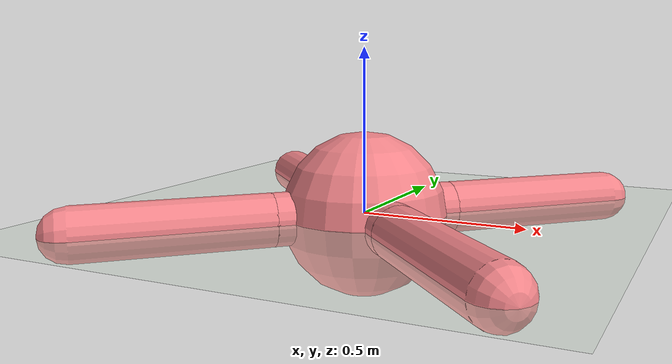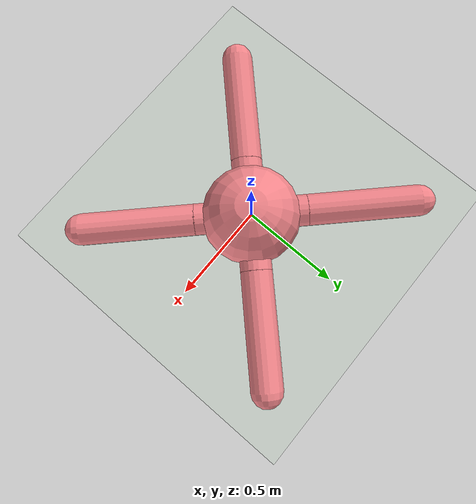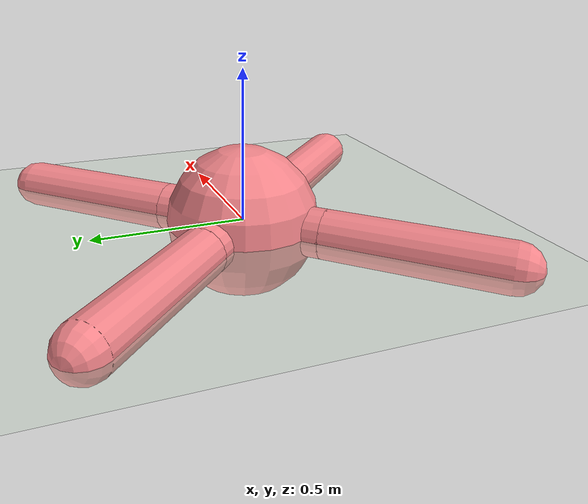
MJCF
<mujoco model="ant">
  <compiler angle="degree" coordinate="global" inertiafromgeom="true"/>
  <option integrator="RK4" timestep="0.01"/>
  <default>
    <joint armature="1" damping="1" limited="true"/>
    <geom conaffinity="0" condim="3" density="5.0" friction="1 0.5 0.5" margin="0.01" rgba=".98 .54 .56 1."/>
  </default>
  <visual>
    <headlight ambient=".1 .1 .1" diffuse=".6 .6 .6" specular="0.3 0.3 0.3"/>
    <map znear=".01"/>
    <quality shadowsize="16384"/>
  </visual>
  <worldbody>
    <light cutoff="100" diffuse="1 1 1" dir="-0 0 -1.3" directional="true" exponent="1" pos="0 0 1.3" specular=".1 .1 .1"/>
    <geom conaffinity="1" condim="3" name="floor" pos="0 0 0" rgba="0.8 0.9 0.8 1" size="200 200 .125" type="plane" material="grid_new"/>
    <body name="0" pos="0 0 0">
      <camera name="track" mode="trackcom" pos="0 -3 0.3" xyaxes="1 0 0 0 0 1"/>
      <geom pos="0 0 0" size="0.25" type="sphere"/>
      <joint armature="0" damping="0" limited="false" margin="0.01" name="0_joint" pos="0 0 0" type="free"/>
      <body name="1" pos="0 0 0">
        <joint axis="0 0 1.0" name="1_joint" pos="0 0 0" range="-30 30" type="hinge"/>
        <geom fromto="0.0 0.0 0.0 0.2 0.2 0.0" size="0.08" type="capsule"/>
        <body name="11" pos="0.2 0.2 0">
          <joint axis="-0.707107 0.707107 0" name="11_joint" pos="0.2 0.2 0" range="30 70" type="hinge"/>
          <geom fromto="0.2 0.2 0.0 0.6 0.6 0.0" size="0.08" type="capsule"/>
        </body>
      </body>
      <body name="2" pos="0 0 0">
        <joint axis="0 0 1.0" name="2_joint" pos="0 0 0" range="-30 30" type="hinge"/>
        <geom fromto="0.0 0.0 0.0 -0.2 0.2 0.0" size="0.08" type="capsule"/>
        <body name="12" pos="-0.2 0.2 0">
          <joint axis="0.707107 0.707107 0" name="12_joint" pos="-0.2 0.2 0" range="-70 -30" type="hinge"/>
          <geom fromto="-0.2 0.2 0.0 -0.6 0.6 0.0" size="0.08" type="capsule"/>
        </body>
      </body>
      <body name="3" pos="0 0 0">
        <joint axis="0 0 1.0" name="3_joint" pos="0 0 0" range="-30 30" type="hinge"/>
        <geom fromto="0.0 0.0 0.0 -0.2 -0.2 0.0" size="0.08" type="capsule"/>
        <body name="13" pos="-0.2 -0.2 0">
          <joint axis="-0.707107 0.707107 0" name="13_joint" pos="-0.2 -0.2 0" range="-70 -30" type="hinge"/>
          <geom fromto="-0.2 -0.2 0.0 -0.6 -0.6 0.0" size="0.08" type="capsule"/>
        </body>
      </body>
      <body name="4" pos="0 0 0">
        <joint axis="0 0 1.0" name="4_joint" pos="0 0 0" range="-30 30" type="hinge"/>
        <geom fromto="0.0 0.0 0.0 0.2 -0.2 0.0" size="0.08" type="capsule"/>
        <body name="14" pos="0.2 -0.2 0">
          <joint axis="0.707107 0.707107 0" name="14_joint" pos="0.2 -0.2 0" range="30 70" type="hinge"/>
          <geom fromto="0.2 -0.2 0.0 0.6 -0.6 0.0" size="0.08" type="capsule"/>
        </body>
      </body>
    </body>
  </worldbody>
  <actuator>
    <motor ctrllimited="true" ctrlrange="-1.0 1.0" joint="1_joint" gear="150" name="1_joint"/>
    <motor ctrllimited="true" ctrlrange="-1.0 1.0" joint="2_joint" gear="150" name="2_joint"/>
    <motor ctrllimited="true" ctrlrange="-1.0 1.0" joint="3_joint" gear="150" name="3_joint"/>
    <motor ctrllimited="true" ctrlrange="-1.0 1.0" joint="4_joint" gear="150" name="4_joint"/>
    <motor ctrllimited="true" ctrlrange="-1.0 1.0" joint="11_joint" gear="150" name="11_joint"/>
    <motor ctrllimited="true" ctrlrange="-1.0 1.0" joint="12_joint" gear="150" name="12_joint"/>
    <motor ctrllimited="true" ctrlrange="-1.0 1.0" joint="13_joint" gear="150" name="13_joint"/>
    <motor ctrllimited="true" ctrlrange="-1.0 1.0" joint="14_joint" gear="150" name="14_joint"/>
  </actuator>
  <asset>
    <texture type="skybox" builtin="gradient" rgb1=".4 .5 .6" rgb2="0 0 0" width="100" height="100"/>
    <texture builtin="flat" height="1278" mark="cross" markrgb="1 1 1" name="texgeom" random="0.01" rgb1="0.8 0.6 0.4" rgb2="0.8 0.6 0.4" type="cube" width="127"/>
    <texture builtin="checker" height="100" name="texplane" rgb1="0 0 0" rgb2="0.8 0.8 0.8" type="2d" width="100"/>
    <material name="MatPlane" reflectance="0.5" shininess="1" specular="1" texrepeat="60 60" texture="texplane"/>
    <material name="geom" texture="texgeom" texuniform="true"/>
    <texture name="grid_new" type="2d" builtin="checker" rgb1=".1 .3 .2" rgb2=".2 .4 .3" width="1000" height="1000" mark="none" markrgb=".8 .6 .4"/>
    <material name="grid_new" texture="grid_new" texrepeat="0.2 0.2" texuniform="true" reflectance=".2"/>
  </asset>
</mujoco>
